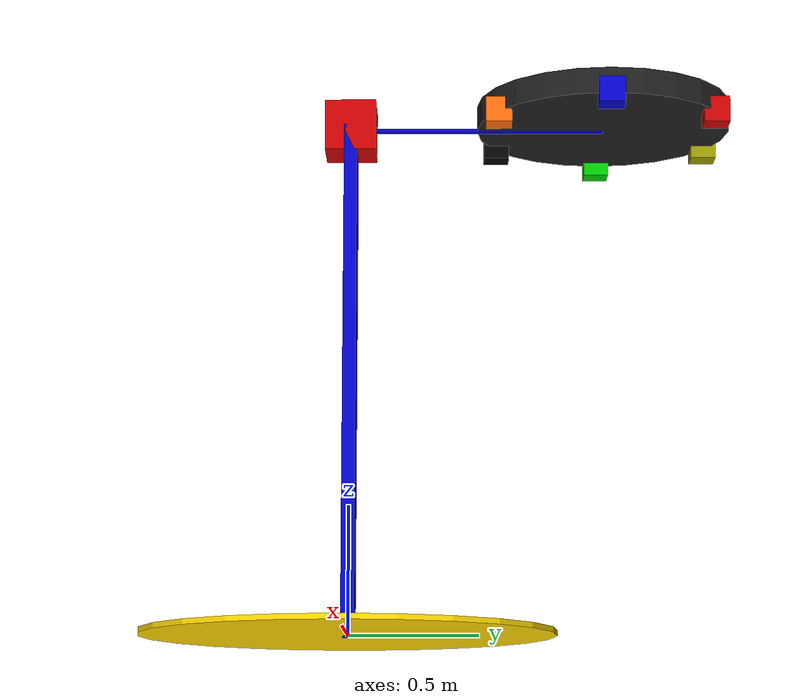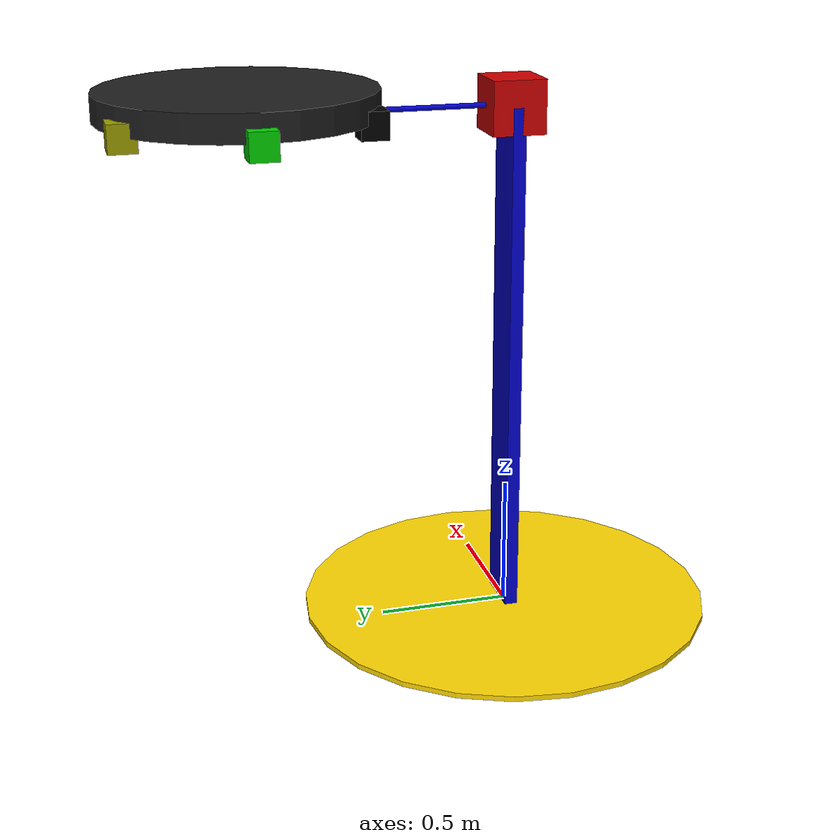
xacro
<?xml version="1.0"?>
<!-- Revolute-Revolute Manipulator -->
<robot name="spinner" xmlns:xacro="http://www.ros.org/wiki/xacro">

  <!-- Constants for robot dimensions -->
  <xacro:property name="PI" value="3.1415926535897931"/>
  <xacro:property name="mass" value="1" /> <!-- arbitrary value for mass -->
  <xacro:property name="width" value="0.1" /> <!-- Square dimensions (widthxwidth) of beams -->
  <xacro:property name="height1" value="2" /> <!-- Link 1 -->
  <xacro:property name="height2" value="1" /> <!-- Link 2 -->
  <xacro:property name="height3" value="1" /> <!-- Link 3 -->
  <xacro:property name="camera_link" value="0.05" /> <!-- Size of square 'camera' box -->
  <xacro:property name="axel_offset" value="0.05" /> <!-- Space btw top of beam and the each joint -->

  <!-- Import all Gazebo-customization elements, including Gazebo colors -->
  <xacro:include filename="$(find spinner_description)/urdf/spinner.gazebo" />
  <!-- Import Rviz colors -->
  <xacro:include filename="$(find spinner_description)/urdf/materials.xacro" />

  <!-- Used for fixing robot to Gazebo 'base_link' -->

  <link name="base">
    <collision>
      <origin xyz="0 0 0.01" rpy="0 0 0"/>
      <geometry>
	<cylinder radius="0.8" length="0.02"/>
      </geometry>
    </collision>

    <visual>
      <origin xyz="0 0 0.01" rpy="0 0 0"/>
      <geometry>
	<cylinder radius="0.8" length="0.02"/>
      </geometry>
      <material name="gold"/>
    </visual>

    <inertial>
      <origin xyz="0 0 0.01" rpy="0 0 0"/>
      <mass value="100"/>
      <inertia
	  ixx="10" ixy="0.0" ixz="0.0"
	  iyy="10" iyz="0.0"
	  izz="10"/>
    </inertial>
  </link>

  <joint name="basepole" type="fixed">
    <parent link="base"/>
    <child link="pole"/>
  </joint>

  <link name="pole">
    <collision>
      <origin xyz="0 0 1.0" rpy="0 0 0"/>
      <geometry>
	<box size="0.1 0.1 2.0"/>
      </geometry>
    </collision>

    <visual>
      <origin xyz="0 0 1.0" rpy="0 0 0"/>
      <geometry>
	<box size="0.2 0.05 2.0"/>
      </geometry>
      <material name="blue"/>
    </visual>

    <inertial>
      <origin xyz="0 0 1.0" rpy="0 0 0"/>
      <mass value="1"/>
      <inertia
	  ixx="1" ixy="0.0" ixz="0.0"
	  iyy="1" iyz="0.0"
	  izz="1"/>
    </inertial>
  </link>

    <!--limit effort="1000" lower="-1" upper="1" velocity="0.5"/-->

  <joint name="pancam" type="revolute">
    <parent link="pole"/>
    <child link="camera_link"/>
    <origin xyz="0 0 2.0" rpy="0 0 0"/>
    <axis xyz="0 0 1"/>
    <limit effort="1000" lower="-0.1" upper="0.1" velocity="0.5"/>
    <dynamics damping="0.7"/>
  </joint>

  <link name="camera_link">
    <collision>
      <origin xyz="0 0 0" rpy="0 0 0"/>
      <geometry>
	<box size="0.1 0.1 0.1"/>
      </geometry>
    </collision>

    <visual>
      <origin xyz="0 0 0" rpy="0 0 0"/>
      <geometry>
	<box size="0.1 0.1 0.1"/>
      </geometry>
      <material name="grey"/>
    </visual>

    <inertial>
      <origin xyz="0 0 0" rpy="0 0 0"/>
      <mass value="0.01"/>
      <inertia
	  ixx="1" ixy="0.0" ixz="0.0"
	  iyy="1" iyz="0.0"
	  izz="1"/>
    </inertial>
  </link>

  <link name="arm0">
    <collision>
      <origin xyz="0 0 0" rpy="0 0 0"/>
      <geometry>
	<box size="0.2 0.2 0.2"/>
      </geometry>
    </collision>

    <visual>
      <origin xyz="0 0 0.0" rpy="0 0 0"/>
      <geometry>
	<box size="0.2 0.2 0.2"/>
      </geometry>
      <material name="red"/>
    </visual>

    <inertial>
      <origin xyz="0 0 0" rpy="0 0 0"/>
      <mass value="1"/>
      <inertia
	  ixx="1" ixy="0.0" ixz="0.0"
	  iyy="1" iyz="0.0"
	  izz="1"/>
    </inertial>
  </link>

  <joint name="azimuth" type="continuous">
    <parent link="pole"/>
    <child link="arm0"/>
    <origin xyz="0 0 2.0" rpy="0 0 0"/>
    <axis xyz="0 0 1"/>
    <dynamics damping="10.0"/>
  </joint>

  <joint name="elevation" type="continuous">
    <parent link="arm0"/>
    <child link="arm"/>
    <origin xyz="0 0 0" rpy="0 0 0"/>
    <axis xyz="1 0 0"/>
    <dynamics damping="10.0"/>
  </joint>

  <joint name="spinner" type="continuous">
    <parent link="arm"/>
    <child link="barrel"/>
    <origin xyz="0 1.0 0" rpy="0 0 0"/>
    <axis xyz="0 0 1"/>
    <dynamics damping="1.0"/>
  </joint>

  <link name="arm">
    <collision>
      <origin xyz="0 0.5 0" rpy="-1.5708 0 0"/>
      <geometry>
	<cylinder radius="0.01" length="1.0"/>
      </geometry>
    </collision>

    <visual>
      <origin xyz="0 0.5 0" rpy="-1.5708 0 0"/>
      <geometry>
	<cylinder radius="0.01" length="1.0"/>
      </geometry>
      <material name="blue"/>
    </visual>

    <inertial>
      <origin xyz="0 0.5 0" rpy="-1.5708 0 0"/>
      <mass value="1"/>
      <inertia
	  ixx="1" ixy="0.0" ixz="0.0"
	  iyy="1" iyz="0.0"
	  izz="1"/>
    </inertial>
  </link>

  <link name="barrel">
    <collision>
      <origin xyz="0 0 0.05" rpy="0 0 0"/>
      <geometry>
	<cylinder radius="0.5" length="0.1"/>
      </geometry>
    </collision>

    <visual>
      <origin xyz="0 0 0.05" rpy="0 0 0"/>
      <geometry>
	<cylinder radius="0.5" length="0.1"/>
      </geometry>
      <!--material name="orange"/-->
      <material name="whorl"/>
    </visual>

    <inertial>
      <origin xyz="0 0 0.05" rpy="0 0 0"/>
      <mass value="1"/>
      <inertia
	  ixx="1" ixy="0.0" ixz="0.0"
	  iyy="1" iyz="0.0"
	  izz="1"/>
    </inertial>
  </link>

  <link name="blue_blk">
    <collision><geometry><box size="0.1 0.1 0.1"/></geometry></collision>
    <visual><geometry><box size="0.1 0.1 0.1"/></geometry><material name="blue"/></visual>
    <inertial><mass value="0.01"/><inertia ixx="1" ixy="0.0" ixz="0.0" iyy="1"
       iyz="0.0" izz="1"/></inertial></link>
  <joint name="blue_jt" type="fixed"><parent link="barrel"/><child link="blue_blk"/>
    <origin xyz="0.5 0 0" rpy="0 0 0"/></joint>

  <link name="red_blk">
    <collision><geometry><box size="0.1 0.1 0.1"/></geometry></collision>
    <visual><geometry><box size="0.1 0.1 0.1"/></geometry><material name="red"/></visual>
    <inertial><mass value="0.01"/><inertia ixx="1" ixy="0.0" ixz="0.0" iyy="1"
       iyz="0.0" izz="1"/></inertial></link>
  <joint name="red_jt" type="fixed"><parent link="barrel"/><child link="red_blk"/>
    <origin xyz="0.25 0.42 0" rpy="0 0 0"/></joint>

  <link name="yellow_blk">
    <collision><geometry><box size="0.1 0.1 0.1"/></geometry></collision>
    <visual><geometry><box size="0.1 0.1 0.1"/></geometry><material name="yellow"/></visual>
    <inertial><mass value="0.01"/><inertia ixx="1" ixy="0.0" ixz="0.0" iyy="1"
       iyz="0.0" izz="1"/></inertial></link>
  <joint name="yellow_jt" type="fixed"><parent link="barrel"/><child link="yellow_blk"/>
    <origin xyz="-0.25 0.42 0" rpy="0 0 0"/></joint>

  <link name="green_blk">
    <collision><geometry><box size="0.1 0.1 0.1"/></geometry></collision>
    <visual><geometry><box size="0.1 0.1 0.1"/></geometry><material name="green"/></visual>
    <inertial><mass value="0.01"/><inertia ixx="1" ixy="0.0" ixz="0.0" iyy="1"
       iyz="0.0" izz="1"/></inertial></link>
  <joint name="green_jt" type="fixed"><parent link="barrel"/><child link="green_blk"/>
    <origin xyz="-0.5 0 0" rpy="0 0 0"/></joint>

  <link name="black_blk">
    <collision><geometry><box size="0.1 0.1 0.1"/></geometry></collision>
    <visual><geometry><box size="0.1 0.1 0.1"/></geometry><material name="black"/></visual>
    <inertial><mass value="0.01"/><inertia ixx="1" ixy="0.0" ixz="0.0" iyy="1"
       iyz="0.0" izz="1"/></inertial></link>
  <joint name="black_jt" type="fixed"><parent link="barrel"/><child link="black_blk"/>
    <origin xyz="-0.25 -0.42 0" rpy="0 0 0"/></joint>

  <link name="orange_blk">
    <collision><geometry><box size="0.1 0.1 0.1"/></geometry></collision>
    <visual><geometry><box size="0.1 0.1 0.1"/></geometry><material name="orange"/></visual>
    <inertial><mass value="0.01"/><inertia ixx="1" ixy="0.0" ixz="0.0" iyy="1"
       iyz="0.0" izz="1"/></inertial></link>
  <joint name="orange_jt" type="fixed"><parent link="barrel"/><child link="orange_blk"/>
    <origin xyz="0.25 -0.42 0" rpy="0 0 0"/></joint>
</robot>

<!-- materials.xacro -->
<robot>

  <material name="black">
    <color rgba="0.0 0.0 0.0 1.0"/>
  </material>

  <material name="blue">
    <color rgba="0.0 0.0 0.8 1.0"/>
  </material>

  <material name="green">
    <color rgba="0.0 0.8 0.0 1.0"/>
  </material>

  <material name="grey">
    <color rgba="0.2 0.2 0.2 1.0"/>
  </material>

  <material name="gold">
    <color rgba="${255/255} ${215/255} ${0/255} 1.0"/>
  </material>

  <material name="orange">
    <color rgba="${255/255} ${108/255} ${10/255} 1.0"/>
  </material>

  <material name="brown">
    <color rgba="${222/255} ${207/255} ${195/255} 1.0"/>
  </material>

  <material name="red">
    <color rgba="0.8 0.0 0.0 1.0"/>
  </material>

  <material name="yellow">
    <color rgba="0.6 0.6 0.0 1.0"/>
  </material>

  <material name="white">
    <color rgba="1.0 1.0 1.0 1.0"/>
  </material>

  <material name="whorl">
    <texture filename="package://spinner_description/materials/textures/barrelgradient.png" />
  </material>

  <material name="squares">
    <texture filename="package://spinner_description/materials/textures/squares.png" />
  </material>

</robot>
